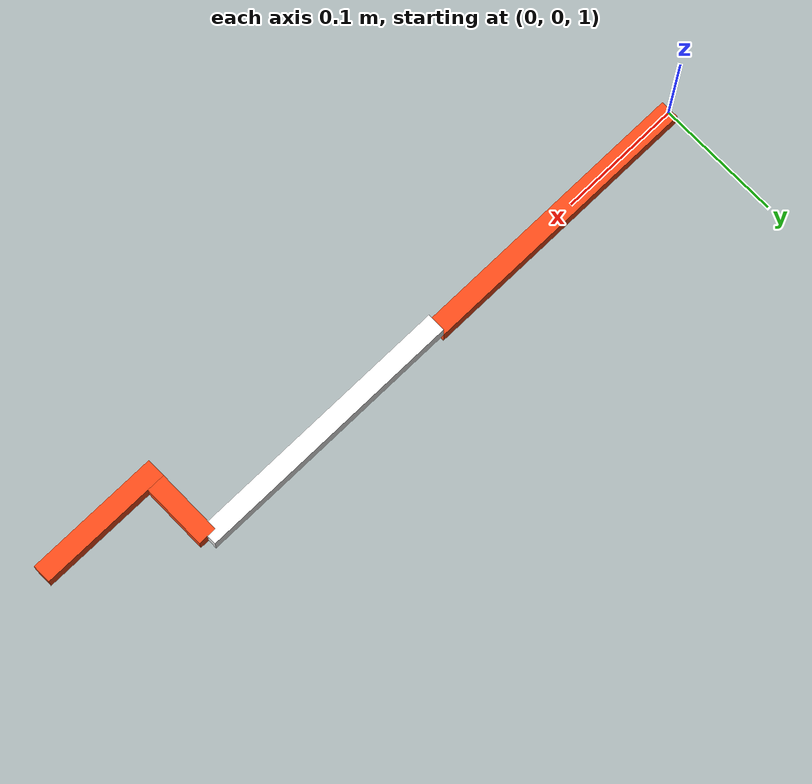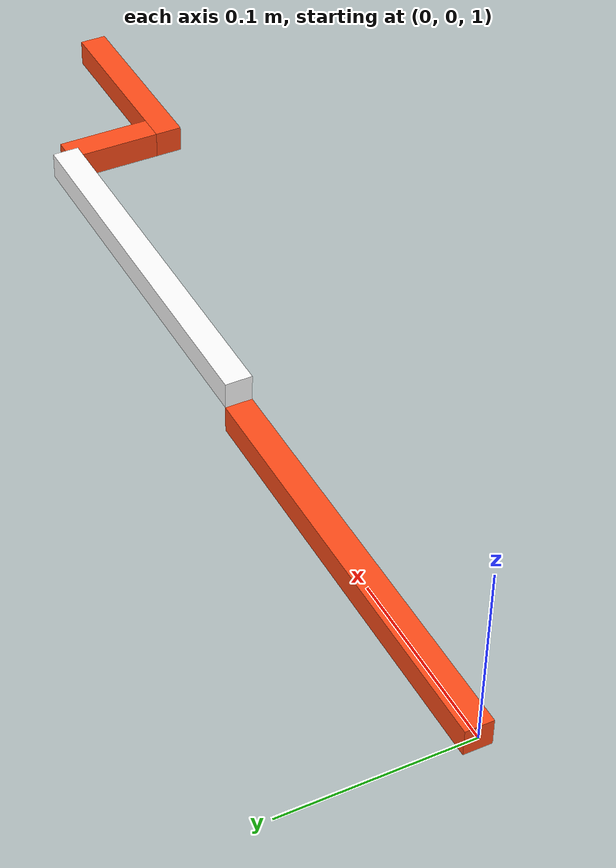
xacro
<?xml version="1.0"?>
<robot xmlns:xacro="http://www.ros.org/wiki/xacro" name="arm">
    <xacro:arg name="initial_positions_file" default="initial_positions.yaml" />

    <!-- Import arm urdf file -->
    <xacro:include filename="$(find arm_description)/description/robot.urdf.xacro" />

    <!-- Import control_xacro -->
    <xacro:include filename="arm.ros2_control.xacro" />

    <xacro:arm_ros2_control name="FakeSystem" initial_positions_file="$(arg initial_positions_file)"/>

</robot>

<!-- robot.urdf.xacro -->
<robot xmlns:xacro="http://www.ros.org/wiki/xacro" name="arm">

    <xacro:arg name="use_sim_time" default="true"/>
    <xacro:include filename="robot_core.xacro" />
    <xacro:include filename="ros2_control.xacro" />

</robot>

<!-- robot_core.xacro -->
<robot xmlns:xacro="http://www.ros.org/wiki/xacro">
    <xacro:include filename="$(find arm_description)/description/material.xacro"/>
    <xacro:include filename="$(find arm_description)/description/inertial_macros.xacro"/>

    <link name="world"/>

    <joint name="world_joint" type="fixed">
        <parent link="world"/>
        <child link="world_link" />
        <origin xyz="0 0 0" rpy="0 0 0"/>
        <axis xyz="0 0 1"/>
    </joint>

    <link name="world_link">
        <inertial>
        <origin xyz="0 0 0" rpy="0 0 0"/>
        <mass value="0.001"/>
        <inertia
            ixx="0.001" ixy="0.0" ixz="0.0"
            iyy="0.001" iyz="0.0"
            izz="0.001"/>
        </inertial>
    </link>

    <joint name="base_joint" type="fixed">
        <parent link="world_link"/>
        <child link="base_link" />
        <origin xyz="0 0 1" rpy="${pi/2} 0 0"/>
        <axis xyz="0 0 1"/>
    </joint>

    <link name="base_link">
        <inertial>
        <origin xyz="0 0 0" rpy="0 0 0"/>
        <mass value="0.001"/>
        <inertia
            ixx="0.001" ixy="0.0" ixz="0.0"
            iyy="0.001" iyz="0.0"
            izz="0.001"/>
        </inertial>
    </link>

    <joint name="joint1" type="revolute">
        <parent link="base_link"/>
        <child link="link1" />
        <origin xyz="0 0 0" rpy="0 0 0"/>
        <axis xyz="0 0 1"/>
        <limit lower="-1.5" upper="3.14" effort="1000" velocity="0.5"/>
    </joint>

    <link name="link1">
        <collision>
            <origin xyz="0.1 0 0" rpy="0 0 0"/>
            <geometry>
                <box size="0.2 0.015 0.015"/>
            </geometry>
        </collision>

        <visual>
            <origin xyz="0.1175 0 0" rpy="0 0 0"/>
            <geometry>
                <box size="0.235 0.015 0.015"/>
            </geometry>
            <material name="orange"/>
        </visual>

        <xacro:inertial_box mass="0.3" x="0.1" y="0.015" z="0.015">
            <origin xyz="0.2 0 0" rpy="0 0 0"/>
        </xacro:inertial_box>
    </link>

    <gazebo reference='link1'>
        <material>
            Gazebo/Orange
        </material>
    </gazebo>

    <joint name="joint2" type="revolute">
        <parent link="link1"/>
        <child link="link2" />
        <origin xyz="0.235 0.015 0" rpy="0 0 0"/>
        <axis xyz="0 0 1"/>
        <limit lower="-1.5" upper="3" effort="1000" velocity="0.5"/>
    </joint>

    <link name="link2">
        <collision>
            <origin xyz="0.1 0 0" rpy="0 0 0"/>
            <geometry>
                <box size="0.2 0.015 0.015"/>
            </geometry>
        </collision>

        <visual>
            <origin xyz="0.11 0 0" rpy="0 0 0"/>
            <geometry>
                <box size="0.22 0.015 0.015"/>
            </geometry>
            <material name="white"/>
        </visual>

        <xacro:inertial_box mass="0.3" x="0.22" y="0.015" z="0.015">
            <origin xyz="0.11 0 0" rpy="0 0 0"/>
        </xacro:inertial_box>
    </link>

    <gazebo reference='link2'>
        <material>
            Gazebo/White
        </material>
    </gazebo>

    <joint name="joint3" type="revolute">
        <parent link="link2"/>
        <child link="link3" />
        <origin xyz="0.22 0.0 0" rpy="-${pi/2} -${pi/2} 0"/>
        <axis xyz="0 0 1"/>
        <limit lower="-1.5" upper="3.15" effort="1000" velocity="0.5"/>
    </joint>

    <link name="link3">

        <collision>
            <origin xyz="0.06 0.04625 0" rpy="0 0 0"/>
            <geometry>
                <box size="0.015 0.1075 0.015"/>
            </geometry>
        </collision>

        <visual>
            <origin xyz="0.02625 0 0" rpy="0 0 0"/>
            <geometry>
                <box size="0.0525 0.015 0.015"/>
            </geometry>
            <material name="orange"/>
        </visual>

        <visual>
            <origin xyz="0.06 0.04625 0" rpy="0 0 0"/>
            <geometry>
                <box size="0.015 0.1075 0.015"/>
            </geometry>
            <material name="orange"/>
        </visual>

        <xacro:inertial_box mass="0.3" x="0.015" y="0.1075" z="0.015">
            <origin xyz="0.06 0.04625 0" rpy="0 0 0"/>
        </xacro:inertial_box>
    </link>

    <gazebo reference='link3'>
        <material>
            Gazebo/Orange
        </material>
    </gazebo>

    <joint name="eef_joint" type="fixed">
        <parent link="link3"/>
        <child link="eef" />
        <origin xyz="0.06 0.1 0" rpy="-${pi/2} 0 0"/>
        <axis xyz="0 0 1"/>
    </joint>

    <link name="eef">
        <inertial>
        <origin xyz="0 0 0" rpy="0 0 0"/>
        <mass value="0.001"/>
        <inertia
            ixx="0.001" ixy="0.0" ixz="0.0"
            iyy="0.001" iyz="0.0"
            izz="0.001"/>
        </inertial>
    </link>

</robot>

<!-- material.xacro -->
<robot xmlns:xacro="http://www.ros.org/wiki/xacro" >
    <material name="white">
        <color rgba="1 1 1 1" />
    </material>

    <material name="orange">
        <color rgba="1 0.3 0.1 1"/>
    </material>

    <material name="blue">
        <color rgba="0.2 0.2 1 1"/>
    </material>

    <material name="black">
        <color rgba="0 0 0 1"/>
    </material>
</robot>
